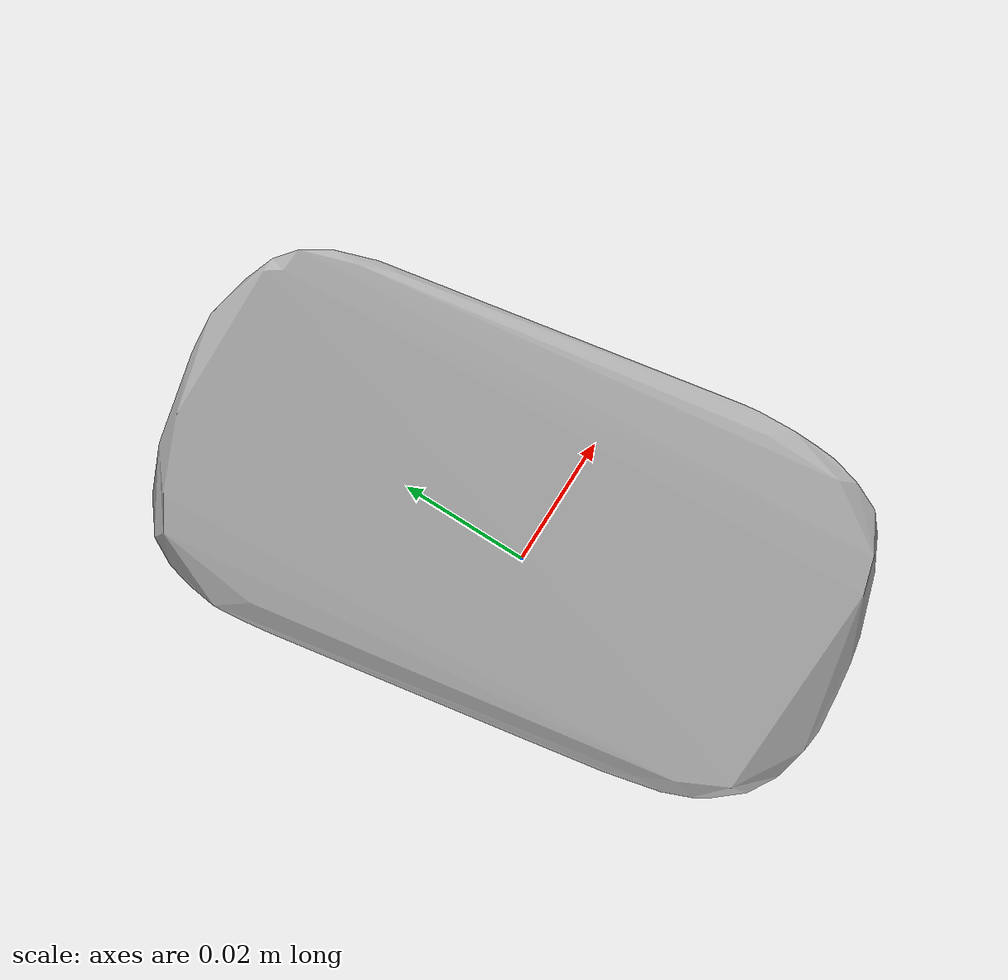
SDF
<?xml version='1.0'?>
<sdf version="1.4">
  <model name="spam">
    <static>false</static>
    <link name="link">
      <inertial>
        <pose>0.00410248470397596 0.0037459995491821874 0.04260596896307961 1.5662547868564685 0.006465206279538363 -2.976874724067371</pose>
        <mass>0.04115908372792381</mass>
        <inertia>
          <ixx>5.0336121931586776e-05</ixx>
          <ixy>3.870653388723665e-25</ixy>
          <ixz>-7.816471738419513e-21</ixz>
          <iyy>4.1215634275081876e-05</iyy>
          <iyz>2.5897536765491245e-22</iyz>
          <izz>2.9997790885166637e-05</izz>
        </inertia>
      </inertial>
      <collision name="collision">
        <geometry>
          <mesh>
            <!-- Use a downsampled mesh for collisions -->
            <uri>model:///spam/spam_250_collision.obj</uri>
	        </mesh>
        </geometry>
        <surface>
      </surface>
      </collision>
      <visual name="visual">
        <geometry>
          <mesh>
            <uri>model:///spam/optimized_tsdf_texture_mapped_mesh.obj</uri>
	        </mesh>
        </geometry>
        <material>
          <script>
            <uri>model:///spam/spam.material</uri>
            <name>spam</name>
          </script>
        </material>
      </visual>
    </link>
  </model>
</sdf>
